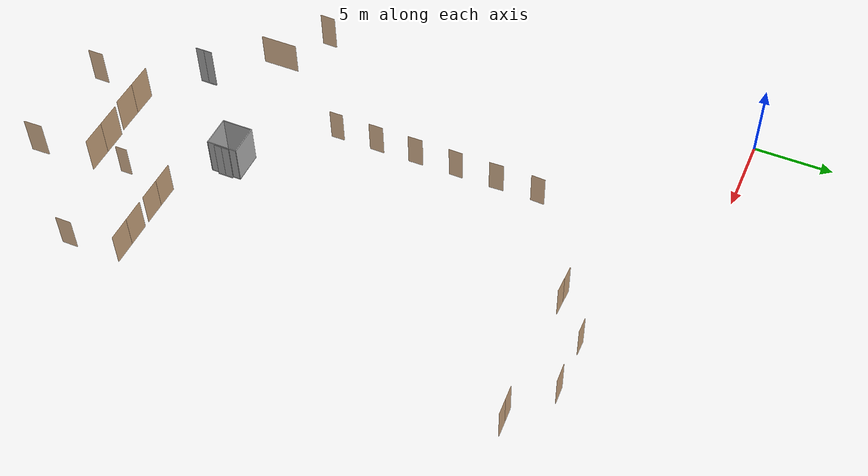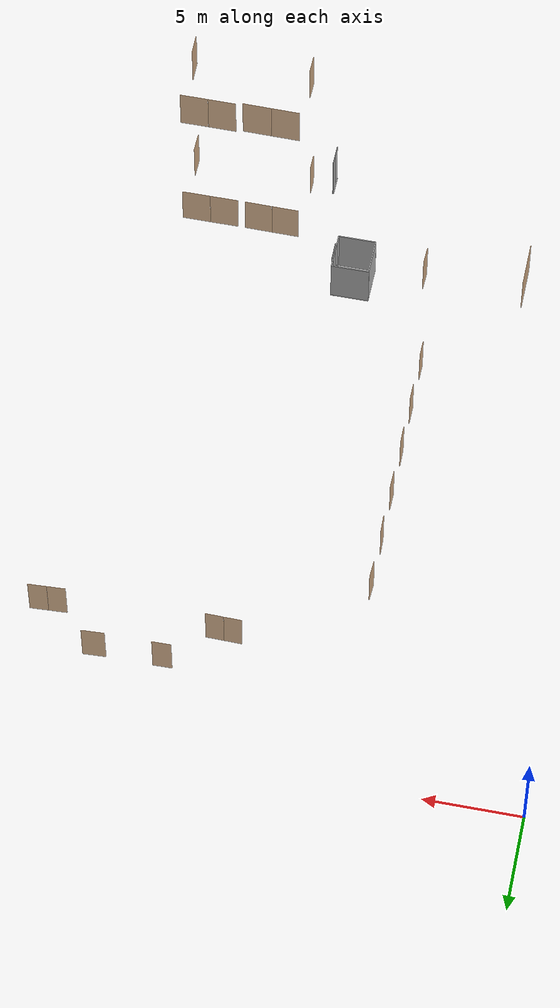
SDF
<sdf version="1.7">
 <world name="sim_world">
  <physics name="10ms" type="ode">
   <max_step_size>0.01</max_step_size>
   <real_time_factor>1.0</real_time_factor>
  </physics>
  <plugin filename="libgz-sim-physics-system.so" name="gz::sim::systems::Physics"/>
  <plugin filename="libgz-sim-user-commands-system.so" name="gz::sim::systems::UserCommands"/>
  <plugin filename="libgz-sim-scene-broadcaster-system.so" name="gz::sim::systems::SceneBroadcaster"/>
  <plugin filename="libdoor.so" name="door"/>
  <plugin filename="liblift.so" name="lift"/>
  <scene><ambient>1 1 1</ambient><background>0.8 0.8 0.8</background><grid>false</grid></scene>
  <light type="directional" name="sun">
   <pose>0 0 10 0 0 0</pose>
   <diffuse>1 1 1 1</diffuse>
   <specular>0.2 0.2 0.2 1</specular>
   <attenuation>
    <range>1000</range>
    <constant>0.09</constant>
    <linear>0.001</linear>
    <quadratic>0.001</quadratic>
   </attenuation>
   <direction>-0.5 0.1 -0.9</direction>
  </light>
  <model name="D1">
   <pose>18.720044101489805 -4.684742985787809 0.0 0 0 -3.1257893716102303</pose>
   <link name="right">
    <pose>0 0 1.11 0 0 0</pose>
    <visual name="right_visual">
     <geometry><box><size>0.9679328813677555 0.03 2.2</size></box></geometry>
     <material>
      <ambient>0.5 0.25 0 0.6</ambient>
      <diffuse>0.5 0.25 0 0.6</diffuse>
      <pbr><metal><metalness>0.0</metalness></metal></pbr>
     </material>
    </visual>
    <collision name="right_collision">
     <geometry><box><size>0.9679328813677555 0.03 2.2</size></box></geometry>
     <surface><contact><collide_bitmask>0x02</collide_bitmask></contact></surface>
    </collision>
    <inertial>
     <mass>50.0</mass>
     <inertia><ixx>20.17041666666667</ixx><iyy>24.07039192847036</iyy><izz>3.907475261803689</izz></inertia>
    </inertial>
   </link>
   <joint name="right_joint" type="prismatic">
    <parent>world</parent>
    <child>right</child>
    <axis>
     <xyz>1 0 0</xyz>
     <limit><lower>0.0</lower><upper>0.9779328813677555</upper><effort>500.0</effort></limit>
    </axis>
   </joint>
   <plugin name="register_component" filename="libregister_component.so">
    <component name="Door">
     <v_max_door>0.2</v_max_door>
     <a_max_door>0.2</a_max_door>
     <a_nom_door>0.08</a_nom_door>
     <dx_min_door>0.001</dx_min_door>
     <f_max_door>100.0</f_max_door>
     <ros_interface>true</ros_interface>
     <door name="D1" type="SlidingDoor" left_joint_name="empty_joint" right_joint_name="right_joint"/>
    </component>
   </plugin>
  </model>
  <model name="D2">
   <pose>22.12810289003186 -4.646453060483513 0.0 0 0 -3.089583908872444</pose>
   <link name="right">
    <pose>0 0 1.11 0 0 0</pose>
    <visual name="right_visual">
     <geometry><box><size>1.1658313053192306 0.03 2.2</size></box></geometry>
     <material>
      <ambient>0.5 0.25 0 0.6</ambient>
      <diffuse>0.5 0.25 0 0.6</diffuse>
      <pbr><metal><metalness>0.0</metalness></metal></pbr>
     </material>
    </visual>
    <collision name="right_collision">
     <geometry><box><size>1.1658313053192306 0.03 2.2</size></box></geometry>
     <surface><contact><collide_bitmask>0x02</collide_bitmask></contact></surface>
    </collision>
    <inertial>
     <mass>50.0</mass>
     <inertia><ixx>20.17041666666667</ixx><iyy>25.829844301926425</iyy><izz>5.666927635259754</izz></inertia>
    </inertial>
   </link>
   <joint name="right_joint" type="prismatic">
    <parent>world</parent>
    <child>right</child>
    <axis>
     <xyz>1 0 0</xyz>
     <limit><lower>0.0</lower><upper>1.1758313053192306</upper><effort>500.0</effort></limit>
    </axis>
   </joint>
   <plugin name="register_component" filename="libregister_component.so">
    <component name="Door">
     <v_max_door>0.2</v_max_door>
     <a_max_door>0.2</a_max_door>
     <a_nom_door>0.08</a_nom_door>
     <dx_min_door>0.001</dx_min_door>
     <f_max_door>100.0</f_max_door>
     <ros_interface>true</ros_interface>
     <door name="D2" type="SlidingDoor" left_joint_name="empty_joint" right_joint_name="right_joint"/>
    </component>
   </plugin>
  </model>
  <model name="D4">
   <pose>24.92635821840749 -6.705641308277513 0.0 0 0 -3.089743979736643</pose>
   <link name="right">
    <pose>0.4743955140775369 0 1.11 0 0 0</pose>
    <visual name="right_visual">
     <geometry><box><size>0.9387910281550738 0.03 2.2</size></box></geometry>
     <material>
      <ambient>0.5 0.25 0 0.6</ambient>
      <diffuse>0.5 0.25 0 0.6</diffuse>
      <pbr><metal><metalness>0.0</metalness></metal></pbr>
     </material>
    </visual>
    <collision name="right_collision">
     <geometry><box><size>0.9387910281550738 0.03 2.2</size></box></geometry>
     <surface><contact><collide_bitmask>0x02</collide_bitmask></contact></surface>
    </collision>
    <inertial>
     <mass>50.0</mass>
     <inertia><ixx>20.17041666666667</ixx><iyy>23.83886914393526</iyy><izz>3.6759524772685856</izz></inertia>
    </inertial>
   </link>
   <joint name="right_joint" type="prismatic">
    <parent>world</parent>
    <child>right</child>
    <axis>
     <xyz>1 0 0</xyz>
     <limit><lower>0.0</lower><upper>0.9487910281550738</upper><effort>500.0</effort></limit>
    </axis>
   </joint>
   <link name="left">
    <pose>-0.4743955140775369 0 1.11 0 0 0</pose>
    <visual name="left_visual">
     <geometry><box><size>0.9387910281550738 0.03 2.2</size></box></geometry>
     <material>
      <ambient>0.5 0.25 0 0.6</ambient>
      <diffuse>0.5 0.25 0 0.6</diffuse>
      <pbr><metal><metalness>0.0</metalness></metal></pbr>
     </material>
    </visual>
    <collision name="left_collision">
     <geometry><box><size>0.9387910281550738 0.03 2.2</size></box></geometry>
     <surface><contact><collide_bitmask>0x02</collide_bitmask></contact></surface>
    </collision>
    <inertial>
     <mass>50.0</mass>
     <inertia><ixx>20.17041666666667</ixx><iyy>23.83886914393526</iyy><izz>3.6759524772685856</izz></inertia>
    </inertial>
   </link>
   <joint name="left_joint" type="prismatic">
    <parent>world</parent>
    <child>left</child>
    <axis>
     <xyz>1 0 0</xyz>
     <limit><lower>-0.9487910281550738</lower><upper>0.0</upper><effort>500.0</effort></limit>
    </axis>
   </joint>
   <plugin name="register_component" filename="libregister_component.so">
    <component name="Door">
     <v_max_door>0.2</v_max_door>
     <a_max_door>0.2</a_max_door>
     <a_nom_door>0.08</a_nom_door>
     <dx_min_door>0.001</dx_min_door>
     <f_max_door>100.0</f_max_door>
     <ros_interface>true</ros_interface>
     <door name="D4" type="DoubleSlidingDoor" left_joint_name="left_joint" right_joint_name="right_joint"/>
    </component>
   </plugin>
  </model>
  <model name="D3">
   <pose>16.08326293109357 -6.7379157049566185 0.0 0 0 3.1232373078030125</pose>
   <link name="right">
    <pose>0.46030379560155715 0 1.11 0 0 0</pose>
    <visual name="right_visual">
     <geometry><box><size>0.9106075912031143 0.03 2.2</size></box></geometry>
     <material>
      <ambient>0.5 0.25 0 0.6</ambient>
      <diffuse>0.5 0.25 0 0.6</diffuse>
      <pbr><metal><metalness>0.0</metalness></metal></pbr>
     </material>
    </visual>
    <collision name="right_collision">
     <geometry><box><size>0.9106075912031143 0.03 2.2</size></box></geometry>
     <surface><contact><collide_bitmask>0x02</collide_bitmask></contact></surface>
    </collision>
    <inertial>
     <mass>50.0</mass>
     <inertia><ixx>20.17041666666667</ixx><iyy>23.62169243815308</iyy><izz>3.458775771486409</izz></inertia>
    </inertial>
   </link>
   <joint name="right_joint" type="prismatic">
    <parent>world</parent>
    <child>right</child>
    <axis>
     <xyz>1 0 0</xyz>
     <limit><lower>0.0</lower><upper>0.9206075912031143</upper><effort>500.0</effort></limit>
    </axis>
   </joint>
   <link name="left">
    <pose>-0.46030379560155715 0 1.11 0 0 0</pose>
    <visual name="left_visual">
     <geometry><box><size>0.9106075912031143 0.03 2.2</size></box></geometry>
     <material>
      <ambient>0.5 0.25 0 0.6</ambient>
      <diffuse>0.5 0.25 0 0.6</diffuse>
      <pbr><metal><metalness>0.0</metalness></metal></pbr>
     </material>
    </visual>
    <collision name="left_collision">
     <geometry><box><size>0.9106075912031143 0.03 2.2</size></box></geometry>
     <surface><contact><collide_bitmask>0x02</collide_bitmask></contact></surface>
    </collision>
    <inertial>
     <mass>50.0</mass>
     <inertia><ixx>20.17041666666667</ixx><iyy>23.62169243815308</iyy><izz>3.458775771486409</izz></inertia>
    </inertial>
   </link>
   <joint name="left_joint" type="prismatic">
    <parent>world</parent>
    <child>left</child>
    <axis>
     <xyz>1 0 0</xyz>
     <limit><lower>-0.9206075912031143</lower><upper>0.0</upper><effort>500.0</effort></limit>
    </axis>
   </joint>
   <plugin name="register_component" filename="libregister_component.so">
    <component name="Door">
     <v_max_door>0.2</v_max_door>
     <a_max_door>0.2</a_max_door>
     <a_nom_door>0.08</a_nom_door>
     <dx_min_door>0.001</dx_min_door>
     <f_max_door>100.0</f_max_door>
     <ros_interface>true</ros_interface>
     <door name="D3" type="DoubleSlidingDoor" left_joint_name="left_joint" right_joint_name="right_joint"/>
    </component>
   </plugin>
  </model>
  <model name="D7">
   <pose>9.528699516886945 -10.90330528094659 0.0 0 0 1.5216555923788775</pose>
   <link name="right">
    <pose>0 0 1.11 0 0 0</pose>
    <visual name="right_visual">
     <geometry><box><size>0.897946558549573 0.03 2.2</size></box></geometry>
     <material>
      <ambient>0.5 0.25 0 0.6</ambient>
      <diffuse>0.5 0.25 0 0.6</diffuse>
      <pbr><metal><metalness>0.0</metalness></metal></pbr>
     </material>
    </visual>
    <collision name="right_collision">
     <geometry><box><size>0.897946558549573 0.03 2.2</size></box></geometry>
     <surface><contact><collide_bitmask>0x02</collide_bitmask></contact></surface>
    </collision>
    <inertial>
     <mass>50.0</mass>
     <inertia><ixx>20.17041666666667</ixx><iyy>23.52628342504593</iyy><izz>3.363366758379257</izz></inertia>
    </inertial>
   </link>
   <joint name="right_joint" type="prismatic">
    <parent>world</parent>
    <child>right</child>
    <axis>
     <xyz>1 0 0</xyz>
     <limit><lower>0.0</lower><upper>0.907946558549573</upper><effort>500.0</effort></limit>
    </axis>
   </joint>
   <plugin name="register_component" filename="libregister_component.so">
    <component name="Door">
     <v_max_door>0.2</v_max_door>
     <a_max_door>0.2</a_max_door>
     <a_nom_door>0.08</a_nom_door>
     <dx_min_door>0.001</dx_min_door>
     <f_max_door>100.0</f_max_door>
     <ros_interface>true</ros_interface>
     <door name="D7" type="SlidingDoor" left_joint_name="empty_joint" right_joint_name="right_joint"/>
    </component>
   </plugin>
  </model>
  <model name="D8">
   <pose>9.524344325249599 -13.6089776645154 0.0 0 0 1.6089519608012752</pose>
   <link name="right">
    <pose>0 0 1.11 0 0 0</pose>
    <visual name="right_visual">
     <geometry><box><size>0.9308186532775621 0.03 2.2</size></box></geometry>
     <material>
      <ambient>0.5 0.25 0 0.6</ambient>
      <diffuse>0.5 0.25 0 0.6</diffuse>
      <pbr><metal><metalness>0.0</metalness></metal></pbr>
     </material>
    </visual>
    <collision name="right_collision">
     <geometry><box><size>0.9308186532775621 0.03 2.2</size></box></geometry>
     <surface><contact><collide_bitmask>0x02</collide_bitmask></contact></surface>
    </collision>
    <inertial>
     <mass>50.0</mass>
     <inertia><ixx>20.17041666666667</ixx><iyy>23.776764022039398</iyy><izz>3.6138473553727266</izz></inertia>
    </inertial>
   </link>
   <joint name="right_joint" type="prismatic">
    <parent>world</parent>
    <child>right</child>
    <axis>
     <xyz>1 0 0</xyz>
     <limit><lower>0.0</lower><upper>0.9408186532775621</upper><effort>500.0</effort></limit>
    </axis>
   </joint>
   <plugin name="register_component" filename="libregister_component.so">
    <component name="Door">
     <v_max_door>0.2</v_max_door>
     <a_max_door>0.2</a_max_door>
     <a_nom_door>0.08</a_nom_door>
     <dx_min_door>0.001</dx_min_door>
     <f_max_door>100.0</f_max_door>
     <ros_interface>true</ros_interface>
     <door name="D8" type="SlidingDoor" left_joint_name="empty_joint" right_joint_name="right_joint"/>
    </component>
   </plugin>
  </model>
  <model name="D9">
   <pose>9.535468583068159 -16.29389583573615 0.0 0 0 1.555978485356067</pose>
   <link name="right">
    <pose>0 0 1.11 0 0 0</pose>
    <visual name="right_visual">
     <geometry><box><size>0.9105663442170852 0.03 2.2</size></box></geometry>
     <material>
      <ambient>0.5 0.25 0 0.6</ambient>
      <diffuse>0.5 0.25 0 0.6</diffuse>
      <pbr><metal><metalness>0.0</metalness></metal></pbr>
     </material>
    </visual>
    <collision name="right_collision">
     <geometry><box><size>0.9105663442170852 0.03 2.2</size></box></geometry>
     <surface><contact><collide_bitmask>0x02</collide_bitmask></contact></surface>
    </collision>
    <inertial>
     <mass>50.0</mass>
     <inertia><ixx>20.17041666666667</ixx><iyy>23.62137944675362</iyy><izz>3.458462780086947</izz></inertia>
    </inertial>
   </link>
   <joint name="right_joint" type="prismatic">
    <parent>world</parent>
    <child>right</child>
    <axis>
     <xyz>1 0 0</xyz>
     <limit><lower>0.0</lower><upper>0.9205663442170852</upper><effort>500.0</effort></limit>
    </axis>
   </joint>
   <plugin name="register_component" filename="libregister_component.so">
    <component name="Door">
     <v_max_door>0.2</v_max_door>
     <a_max_door>0.2</a_max_door>
     <a_nom_door>0.08</a_nom_door>
     <dx_min_door>0.001</dx_min_door>
     <f_max_door>100.0</f_max_door>
     <ros_interface>true</ros_interface>
     <door name="D9" type="SlidingDoor" left_joint_name="empty_joint" right_joint_name="right_joint"/>
    </component>
   </plugin>
  </model>
  <model name="D10">
   <pose>9.535609073120977 -19.00663103741479 0.0 0 0 1.5850605078275433</pose>
   <link name="right">
    <pose>0 0 1.11 0 0 0</pose>
    <visual name="right_visual">
     <geometry><box><size>0.9659942837260804 0.03 2.2</size></box></geometry>
     <material>
      <ambient>0.5 0.25 0 0.6</ambient>
      <diffuse>0.5 0.25 0 0.6</diffuse>
      <pbr><metal><metalness>0.0</metalness></metal></pbr>
     </material>
    </visual>
    <collision name="right_collision">
     <geometry><box><size>0.9659942837260804 0.03 2.2</size></box></geometry>
     <surface><contact><collide_bitmask>0x02</collide_bitmask></contact></surface>
    </collision>
    <inertial>
     <mass>50.0</mass>
     <inertia><ixx>20.17041666666667</ixx><iyy>24.054770650797767</iyy><izz>3.891853984131097</izz></inertia>
    </inertial>
   </link>
   <joint name="right_joint" type="prismatic">
    <parent>world</parent>
    <child>right</child>
    <axis>
     <xyz>1 0 0</xyz>
     <limit><lower>0.0</lower><upper>0.9759942837260804</upper><effort>500.0</effort></limit>
    </axis>
   </joint>
   <plugin name="register_component" filename="libregister_component.so">
    <component name="Door">
     <v_max_door>0.2</v_max_door>
     <a_max_door>0.2</a_max_door>
     <a_nom_door>0.08</a_nom_door>
     <dx_min_door>0.001</dx_min_door>
     <f_max_door>100.0</f_max_door>
     <ros_interface>true</ros_interface>
     <door name="D10" type="SlidingDoor" left_joint_name="empty_joint" right_joint_name="right_joint"/>
    </component>
   </plugin>
  </model>
  <model name="D11">
   <pose>9.543731952538433 -21.674677630474445 0.0 0 0 1.5732226004959984</pose>
   <link name="right">
    <pose>0 0 1.11 0 0 0</pose>
    <visual name="right_visual">
     <geometry><box><size>0.9480428055361436 0.03 2.2</size></box></geometry>
     <material>
      <ambient>0.5 0.25 0 0.6</ambient>
      <diffuse>0.5 0.25 0 0.6</diffuse>
      <pbr><metal><metalness>0.0</metalness></metal></pbr>
     </material>
    </visual>
    <collision name="right_collision">
     <geometry><box><size>0.9480428055361436 0.03 2.2</size></box></geometry>
     <surface><contact><collide_bitmask>0x02</collide_bitmask></contact></surface>
    </collision>
    <inertial>
     <mass>50.0</mass>
     <inertia><ixx>20.17041666666667</ixx><iyy>23.911604838036848</iyy><izz>3.7486881713701763</izz></inertia>
    </inertial>
   </link>
   <joint name="right_joint" type="prismatic">
    <parent>world</parent>
    <child>right</child>
    <axis>
     <xyz>1 0 0</xyz>
     <limit><lower>0.0</lower><upper>0.9580428055361436</upper><effort>500.0</effort></limit>
    </axis>
   </joint>
   <plugin name="register_component" filename="libregister_component.so">
    <component name="Door">
     <v_max_door>0.2</v_max_door>
     <a_max_door>0.2</a_max_door>
     <a_nom_door>0.08</a_nom_door>
     <dx_min_door>0.001</dx_min_door>
     <f_max_door>100.0</f_max_door>
     <ros_interface>true</ros_interface>
     <door name="D11" type="SlidingDoor" left_joint_name="empty_joint" right_joint_name="right_joint"/>
    </component>
   </plugin>
  </model>
  <model name="D12">
   <pose>9.544306684572685 -24.398268881688992 0.0 0 0 1.5694859355668107</pose>
   <link name="right">
    <pose>0 0 1.11 0 0 0</pose>
    <visual name="right_visual">
     <geometry><box><size>0.8866849178800399 0.03 2.2</size></box></geometry>
     <material>
      <ambient>0.5 0.25 0 0.6</ambient>
      <diffuse>0.5 0.25 0 0.6</diffuse>
      <pbr><metal><metalness>0.0</metalness></metal></pbr>
     </material>
    </visual>
    <collision name="right_collision">
     <geometry><box><size>0.8866849178800399 0.03 2.2</size></box></geometry>
     <surface><contact><collide_bitmask>0x02</collide_bitmask></contact></surface>
    </collision>
    <inertial>
     <mass>50.0</mass>
     <inertia><ixx>20.17041666666667</ixx><iyy>23.442542264983057</iyy><izz>3.2796255983163882</izz></inertia>
    </inertial>
   </link>
   <joint name="right_joint" type="prismatic">
    <parent>world</parent>
    <child>right</child>
    <axis>
     <xyz>1 0 0</xyz>
     <limit><lower>0.0</lower><upper>0.8966849178800399</upper><effort>500.0</effort></limit>
    </axis>
   </joint>
   <plugin name="register_component" filename="libregister_component.so">
    <component name="Door">
     <v_max_door>0.2</v_max_door>
     <a_max_door>0.2</a_max_door>
     <a_nom_door>0.08</a_nom_door>
     <dx_min_door>0.001</dx_min_door>
     <f_max_door>100.0</f_max_door>
     <ros_interface>true</ros_interface>
     <door name="D12" type="SlidingDoor" left_joint_name="empty_joint" right_joint_name="right_joint"/>
    </component>
   </plugin>
  </model>
  <model name="D5">
   <pose>18.86538744704114 -31.748861706983305 0.0 0 0 3.1309271958714677</pose>
   <link name="right">
    <pose>0.7197076151679108 0 1.11 0 0 0</pose>
    <visual name="right_visual">
     <geometry><box><size>1.4294152303358216 0.03 2.2</size></box></geometry>
     <material>
      <ambient>0.5 0.25 0 0.6</ambient>
      <diffuse>0.5 0.25 0 0.6</diffuse>
      <pbr><metal><metalness>0.0</metalness></metal></pbr>
     </material>
    </visual>
    <collision name="right_collision">
     <geometry><box><size>1.4294152303358216 0.03 2.2</size></box></geometry>
     <surface><contact><collide_bitmask>0x02</collide_bitmask></contact></surface>
    </collision>
    <inertial>
     <mass>50.0</mass>
     <inertia><ixx>20.17041666666667</ixx><iyy>28.68011625298338</iyy><izz>8.51719958631671</izz></inertia>
    </inertial>
   </link>
   <joint name="right_joint" type="revolute">
    <parent>world</parent>
    <child>right</child>
    <axis><xyz>0 0 -1</xyz><limit><lower>0</lower><upper>1.57</upper></limit></axis>
    <pose>0.7197076151679108 0 0 0 0 0</pose>
   </joint>
   <link name="left">
    <pose>-0.7197076151679108 0 1.11 0 0 0</pose>
    <visual name="left_visual">
     <geometry><box><size>1.4294152303358216 0.03 2.2</size></box></geometry>
     <material>
      <ambient>0.5 0.25 0 0.6</ambient>
      <diffuse>0.5 0.25 0 0.6</diffuse>
      <pbr><metal><metalness>0.0</metalness></metal></pbr>
     </material>
    </visual>
    <collision name="left_collision">
     <geometry><box><size>1.4294152303358216 0.03 2.2</size></box></geometry>
     <surface><contact><collide_bitmask>0x02</collide_bitmask></contact></surface>
    </collision>
    <inertial>
     <mass>50.0</mass>
     <inertia><ixx>20.17041666666667</ixx><iyy>28.68011625298338</iyy><izz>8.51719958631671</izz></inertia>
    </inertial>
   </link>
   <joint name="left_joint" type="revolute">
    <parent>world</parent>
    <child>left</child>
    <axis><xyz>0 0 -1</xyz><limit><lower>-1.57</lower><upper>0</upper></limit></axis>
    <pose>-0.7197076151679108 0 0 0 0 0</pose>
   </joint>
   <plugin name="register_component" filename="libregister_component.so">
    <component name="Door">
     <v_max_door>0.5</v_max_door>
     <a_max_door>0.3</a_max_door>
     <a_nom_door>0.15</a_nom_door>
     <dx_min_door>0.01</dx_min_door>
     <f_max_door>500.0</f_max_door>
     <ros_interface>true</ros_interface>
     <door name="D5" type="DoubleSwingDoor" left_joint_name="left_joint" right_joint_name="right_joint"/>
    </component>
   </plugin>
  </model>
  <model name="D6">
   <pose>22.169113213631626 -31.764213438209378 0.0 0 0 3.141592653589793</pose>
   <link name="right">
    <pose>0.7478093934137799 0 1.11 0 0 0</pose>
    <visual name="right_visual">
     <geometry><box><size>1.4856187868275599 0.03 2.2</size></box></geometry>
     <material>
      <ambient>0.5 0.25 0 0.6</ambient>
      <diffuse>0.5 0.25 0 0.6</diffuse>
      <pbr><metal><metalness>0.0</metalness></metal></pbr>
     </material>
    </visual>
    <collision name="right_collision">
     <geometry><box><size>1.4856187868275599 0.03 2.2</size></box></geometry>
     <surface><contact><collide_bitmask>0x02</collide_bitmask></contact></surface>
    </collision>
    <inertial>
     <mass>50.0</mass>
     <inertia><ixx>20.17041666666667</ixx><iyy>29.362763249062464</iyy><izz>9.199846582395796</izz></inertia>
    </inertial>
   </link>
   <joint name="right_joint" type="revolute">
    <parent>world</parent>
    <child>right</child>
    <axis><xyz>0 0 -1</xyz><limit><lower>0</lower><upper>1.57</upper></limit></axis>
    <pose>0.7478093934137799 0 0 0 0 0</pose>
   </joint>
   <link name="left">
    <pose>-0.7478093934137799 0 1.11 0 0 0</pose>
    <visual name="left_visual">
     <geometry><box><size>1.4856187868275599 0.03 2.2</size></box></geometry>
     <material>
      <ambient>0.5 0.25 0 0.6</ambient>
      <diffuse>0.5 0.25 0 0.6</diffuse>
      <pbr><metal><metalness>0.0</metalness></metal></pbr>
     </material>
    </visual>
    <collision name="left_collision">
     <geometry><box><size>1.4856187868275599 0.03 2.2</size></box></geometry>
     <surface><contact><collide_bitmask>0x02</collide_bitmask></contact></surface>
    </collision>
    <inertial>
     <mass>50.0</mass>
     <inertia><ixx>20.17041666666667</ixx><iyy>29.362763249062464</iyy><izz>9.199846582395796</izz></inertia>
    </inertial>
   </link>
   <joint name="left_joint" type="revolute">
    <parent>world</parent>
    <child>left</child>
    <axis><xyz>0 0 -1</xyz><limit><lower>-1.57</lower><upper>0</upper></limit></axis>
    <pose>-0.7478093934137799 0 0 0 0 0</pose>
   </joint>
   <plugin name="register_component" filename="libregister_component.so">
    <component name="Door">
     <v_max_door>0.5</v_max_door>
     <a_max_door>0.3</a_max_door>
     <a_nom_door>0.15</a_nom_door>
     <dx_min_door>0.01</dx_min_door>
     <f_max_door>500.0</f_max_door>
     <ros_interface>true</ros_interface>
     <door name="D6" type="DoubleSwingDoor" left_joint_name="left_joint" right_joint_name="right_joint"/>
    </component>
   </plugin>
  </model>
  <model name="dorz2">
   <pose>17.381889120224844 -35.089638532048696 0.0 0 0 1.5707963267948966</pose>
   <link name="right">
    <pose>0 0 1.11 0 0 0</pose>
    <visual name="right_visual">
     <geometry><box><size>0.7791453984996275 0.03 2.2</size></box></geometry>
     <material>
      <ambient>0.5 0.25 0 0.6</ambient>
      <diffuse>0.5 0.25 0 0.6</diffuse>
      <pbr><metal><metalness>0.0</metalness></metal></pbr>
     </material>
    </visual>
    <collision name="right_collision">
     <geometry><box><size>0.7791453984996275 0.03 2.2</size></box></geometry>
     <surface><contact><collide_bitmask>0x02</collide_bitmask></contact></surface>
    </collision>
    <inertial>
     <mass>50.0</mass>
     <inertia><ixx>20.17041666666667</ixx><iyy>22.696114800013103</iyy><izz>2.533198133346431</izz></inertia>
    </inertial>
   </link>
   <joint name="right_joint" type="revolute">
    <parent>world</parent>
    <child>right</child>
    <axis><xyz>0 0 1</xyz><limit><lower>0</lower><upper>1.57</upper></limit></axis>
    <pose>0.39457269924981375 0 0 0 0 0</pose>
   </joint>
   <plugin name="register_component" filename="libregister_component.so">
    <component name="Door">
     <v_max_door>0.5</v_max_door>
     <a_max_door>0.3</a_max_door>
     <a_nom_door>0.15</a_nom_door>
     <dx_min_door>0.01</dx_min_door>
     <f_max_door>500.0</f_max_door>
     <ros_interface>true</ros_interface>
     <door name="dorz2" type="SwingDoor" left_joint_name="empty_joint" right_joint_name="right_joint"/>
    </component>
   </plugin>
  </model>
  <model name="DOOR2">
   <pose>23.638038890423836 -35.13140239320448 0.0 0 0 1.5707963267948966</pose>
   <link name="right">
    <pose>0 0 1.11 0 0 0</pose>
    <visual name="right_visual">
     <geometry><box><size>1.0243643997813032 0.03 2.2</size></box></geometry>
     <material>
      <ambient>0.5 0.25 0 0.6</ambient>
      <diffuse>0.5 0.25 0 0.6</diffuse>
      <pbr><metal><metalness>0.0</metalness></metal></pbr>
     </material>
    </visual>
    <collision name="right_collision">
     <geometry><box><size>1.0243643997813032 0.03 2.2</size></box></geometry>
     <surface><contact><collide_bitmask>0x02</collide_bitmask></contact></surface>
    </collision>
    <inertial>
     <mass>50.0</mass>
     <inertia><ixx>20.17041666666667</ixx><iyy>24.538843431413795</iyy><izz>4.375926764747124</izz></inertia>
    </inertial>
   </link>
   <joint name="right_joint" type="revolute">
    <parent>world</parent>
    <child>right</child>
    <axis><xyz>0 0 -1</xyz><limit><lower>0</lower><upper>1.57</upper></limit></axis>
    <pose>0.5171821998906516 0 0 0 0 0</pose>
   </joint>
   <plugin name="register_component" filename="libregister_component.so">
    <component name="Door">
     <v_max_door>0.5</v_max_door>
     <a_max_door>0.3</a_max_door>
     <a_nom_door>0.15</a_nom_door>
     <dx_min_door>0.01</dx_min_door>
     <f_max_door>500.0</f_max_door>
     <ros_interface>true</ros_interface>
     <door name="DOOR2" type="SwingDoor" left_joint_name="empty_joint" right_joint_name="right_joint"/>
    </component>
   </plugin>
  </model>
  <model name="doorz1">
   <pose>5.17383994693792 -30.737307783050383 0.0 0 0 1.5707963267948966</pose>
   <link name="right">
    <pose>0 0 1.11 0 0 0</pose>
    <visual name="right_visual">
     <geometry><box><size>2.436979109039614 0.03 2.2</size></box></geometry>
     <material>
      <ambient>0.5 0.25 0 0.6</ambient>
      <diffuse>0.5 0.25 0 0.6</diffuse>
      <pbr><metal><metalness>0.0</metalness></metal></pbr>
     </material>
    </visual>
    <collision name="right_collision">
     <geometry><box><size>2.436979109039614 0.03 2.2</size></box></geometry>
     <surface><contact><collide_bitmask>0x02</collide_bitmask></contact></surface>
    </collision>
    <inertial>
     <mass>50.0</mass>
     <inertia><ixx>20.17041666666667</ixx><iyy>44.91194657456463</iyy><izz>24.74902990789796</izz></inertia>
    </inertial>
   </link>
   <joint name="right_joint" type="prismatic">
    <parent>world</parent>
    <child>right</child>
    <axis>
     <xyz>1 0 0</xyz>
     <limit><lower>0.0</lower><upper>2.4469791090396136</upper><effort>500.0</effort></limit>
    </axis>
   </joint>
   <plugin name="register_component" filename="libregister_component.so">
    <component name="Door">
     <v_max_door>0.2</v_max_door>
     <a_max_door>0.2</a_max_door>
     <a_nom_door>0.08</a_nom_door>
     <dx_min_door>0.001</dx_min_door>
     <f_max_door>100.0</f_max_door>
     <ros_interface>true</ros_interface>
     <door name="doorz1" type="SlidingDoor" left_joint_name="empty_joint" right_joint_name="right_joint"/>
    </component>
   </plugin>
  </model>
  <model name="D21">
   <pose>18.88875300154898 -31.844863562145612 8.0 0 0 3.127116344744134</pose>
   <link name="right">
    <pose>0.739578573934684 0 1.11 0 0 0</pose>
    <visual name="right_visual">
     <geometry><box><size>1.469157147869368 0.03 2.2</size></box></geometry>
     <material>
      <ambient>0.5 0.25 0 0.6</ambient>
      <diffuse>0.5 0.25 0 0.6</diffuse>
      <pbr><metal><metalness>0.0</metalness></metal></pbr>
     </material>
    </visual>
    <collision name="right_collision">
     <geometry><box><size>1.469157147869368 0.03 2.2</size></box></geometry>
     <surface><contact><collide_bitmask>0x02</collide_bitmask></contact></surface>
    </collision>
    <inertial>
     <mass>50.0</mass>
     <inertia><ixx>20.17041666666667</ixx><iyy>29.160094688065236</iyy><izz>8.997178021398566</izz></inertia>
    </inertial>
   </link>
   <joint name="right_joint" type="revolute">
    <parent>world</parent>
    <child>right</child>
    <axis><xyz>0 0 -1</xyz><limit><lower>0</lower><upper>1.57</upper></limit></axis>
    <pose>0.739578573934684 0 0 0 0 0</pose>
   </joint>
   <link name="left">
    <pose>-0.739578573934684 0 1.11 0 0 0</pose>
    <visual name="left_visual">
     <geometry><box><size>1.469157147869368 0.03 2.2</size></box></geometry>
     <material>
      <ambient>0.5 0.25 0 0.6</ambient>
      <diffuse>0.5 0.25 0 0.6</diffuse>
      <pbr><metal><metalness>0.0</metalness></metal></pbr>
     </material>
    </visual>
    <collision name="left_collision">
     <geometry><box><size>1.469157147869368 0.03 2.2</size></box></geometry>
     <surface><contact><collide_bitmask>0x02</collide_bitmask></contact></surface>
    </collision>
    <inertial>
     <mass>50.0</mass>
     <inertia><ixx>20.17041666666667</ixx><iyy>29.160094688065236</iyy><izz>8.997178021398566</izz></inertia>
    </inertial>
   </link>
   <joint name="left_joint" type="revolute">
    <parent>world</parent>
    <child>left</child>
    <axis><xyz>0 0 -1</xyz><limit><lower>-1.57</lower><upper>0</upper></limit></axis>
    <pose>-0.739578573934684 0 0 0 0 0</pose>
   </joint>
   <plugin name="register_component" filename="libregister_component.so">
    <component name="Door">
     <v_max_door>0.5</v_max_door>
     <a_max_door>0.3</a_max_door>
     <a_nom_door>0.15</a_nom_door>
     <dx_min_door>0.01</dx_min_door>
     <f_max_door>500.0</f_max_door>
     <ros_interface>true</ros_interface>
     <door name="D21" type="DoubleSwingDoor" left_joint_name="left_joint" right_joint_name="right_joint"/>
    </component>
   </plugin>
  </model>
  <model name="D22">
   <pose>22.150442512327572 -31.774928832762654 8.0 0 0 3.1364192866605576</pose>
   <link name="right">
    <pose>0.7255880361581512 0 1.11 0 0 0</pose>
    <visual name="right_visual">
     <geometry><box><size>1.4411760723163023 0.03 2.2</size></box></geometry>
     <material>
      <ambient>0.5 0.25 0 0.6</ambient>
      <diffuse>0.5 0.25 0 0.6</diffuse>
      <pbr><metal><metalness>0.0</metalness></metal></pbr>
     </material>
    </visual>
    <collision name="right_collision">
     <geometry><box><size>1.4411760723163023 0.03 2.2</size></box></geometry>
     <surface><contact><collide_bitmask>0x02</collide_bitmask></contact></surface>
    </collision>
    <inertial>
     <mass>50.0</mass>
     <inertia><ixx>20.17041666666667</ixx><iyy>28.820785297571017</iyy><izz>8.65786863090435</izz></inertia>
    </inertial>
   </link>
   <joint name="right_joint" type="revolute">
    <parent>world</parent>
    <child>right</child>
    <axis><xyz>0 0 -1</xyz><limit><lower>0</lower><upper>1.57</upper></limit></axis>
    <pose>0.7255880361581512 0 0 0 0 0</pose>
   </joint>
   <link name="left">
    <pose>-0.7255880361581512 0 1.11 0 0 0</pose>
    <visual name="left_visual">
     <geometry><box><size>1.4411760723163023 0.03 2.2</size></box></geometry>
     <material>
      <ambient>0.5 0.25 0 0.6</ambient>
      <diffuse>0.5 0.25 0 0.6</diffuse>
      <pbr><metal><metalness>0.0</metalness></metal></pbr>
     </material>
    </visual>
    <collision name="left_collision">
     <geometry><box><size>1.4411760723163023 0.03 2.2</size></box></geometry>
     <surface><contact><collide_bitmask>0x02</collide_bitmask></contact></surface>
    </collision>
    <inertial>
     <mass>50.0</mass>
     <inertia><ixx>20.17041666666667</ixx><iyy>28.820785297571017</iyy><izz>8.65786863090435</izz></inertia>
    </inertial>
   </link>
   <joint name="left_joint" type="revolute">
    <parent>world</parent>
    <child>left</child>
    <axis><xyz>0 0 -1</xyz><limit><lower>-1.57</lower><upper>0</upper></limit></axis>
    <pose>-0.7255880361581512 0 0 0 0 0</pose>
   </joint>
   <plugin name="register_component" filename="libregister_component.so">
    <component name="Door">
     <v_max_door>0.5</v_max_door>
     <a_max_door>0.3</a_max_door>
     <a_nom_door>0.15</a_nom_door>
     <dx_min_door>0.01</dx_min_door>
     <f_max_door>500.0</f_max_door>
     <ros_interface>true</ros_interface>
     <door name="D22" type="DoubleSwingDoor" left_joint_name="left_joint" right_joint_name="right_joint"/>
    </component>
   </plugin>
  </model>
  <model name="door1">
   <pose>17.443446183795047 -35.1092007278768 8.0 0 0 1.565622959865661</pose>
   <link name="right">
    <pose>0 0 1.11 0 0 0</pose>
    <visual name="right_visual">
     <geometry><box><size>0.9126316482192812 0.03 2.2</size></box></geometry>
     <material>
      <ambient>0.5 0.25 0 0.6</ambient>
      <diffuse>0.5 0.25 0 0.6</diffuse>
      <pbr><metal><metalness>0.0</metalness></metal></pbr>
     </material>
    </visual>
    <collision name="right_collision">
     <geometry><box><size>0.9126316482192812 0.03 2.2</size></box></geometry>
     <surface><contact><collide_bitmask>0x02</collide_bitmask></contact></surface>
    </collision>
    <inertial>
     <mass>50.0</mass>
     <inertia><ixx>20.17041666666667</ixx><iyy>23.637068855547682</iyy><izz>3.4741521888810083</izz></inertia>
    </inertial>
   </link>
   <joint name="right_joint" type="revolute">
    <parent>world</parent>
    <child>right</child>
    <axis><xyz>0 0 1</xyz><limit><lower>0</lower><upper>1.57</upper></limit></axis>
    <pose>0.4613158241096406 0 0 0 0 0</pose>
   </joint>
   <plugin name="register_component" filename="libregister_component.so">
    <component name="Door">
     <v_max_door>0.5</v_max_door>
     <a_max_door>0.3</a_max_door>
     <a_nom_door>0.15</a_nom_door>
     <dx_min_door>0.01</dx_min_door>
     <f_max_door>500.0</f_max_door>
     <ros_interface>true</ros_interface>
     <door name="door1" type="SwingDoor" left_joint_name="empty_joint" right_joint_name="right_joint"/>
    </component>
   </plugin>
  </model>
  <model name="door2">
   <pose>23.600851500333057 -35.1751370616326 8.0 0 0 1.6004001383223114</pose>
   <link name="right">
    <pose>0 0 1.11 0 0 0</pose>
    <visual name="right_visual">
     <geometry><box><size>1.0772107119491567 0.03 2.2</size></box></geometry>
     <material>
      <ambient>0.5 0.25 0 0.6</ambient>
      <diffuse>0.5 0.25 0 0.6</diffuse>
      <pbr><metal><metalness>0.0</metalness></metal></pbr>
     </material>
    </visual>
    <collision name="right_collision">
     <geometry><box><size>1.0772107119491567 0.03 2.2</size></box></geometry>
     <surface><contact><collide_bitmask>0x02</collide_bitmask></contact></surface>
    </collision>
    <inertial>
     <mass>50.0</mass>
     <inertia><ixx>20.17041666666667</ixx><iyy>25.001595491408377</iyy><izz>4.838678824741705</izz></inertia>
    </inertial>
   </link>
   <joint name="right_joint" type="revolute">
    <parent>world</parent>
    <child>right</child>
    <axis><xyz>0 0 -1</xyz><limit><lower>0</lower><upper>1.57</upper></limit></axis>
    <pose>0.5436053559745784 0 0 0 0 0</pose>
   </joint>
   <plugin name="register_component" filename="libregister_component.so">
    <component name="Door">
     <v_max_door>0.5</v_max_door>
     <a_max_door>0.3</a_max_door>
     <a_nom_door>0.15</a_nom_door>
     <dx_min_door>0.01</dx_min_door>
     <f_max_door>500.0</f_max_door>
     <ros_interface>true</ros_interface>
     <door name="door2" type="SwingDoor" left_joint_name="empty_joint" right_joint_name="right_joint"/>
    </component>
   </plugin>
  </model>
  <model name="door3">
   <pose>9.56994146967768 -24.352249286425018 8.0 0 0 1.5358513716896705</pose>
   <link name="right">
    <pose>0 0 1.11 0 0 0</pose>
    <visual name="right_visual">
     <geometry><box><size>0.8964851639905869 0.03 2.2</size></box></geometry>
     <material>
      <ambient>0.5 0.25 0 0.6</ambient>
      <diffuse>0.5 0.25 0 0.6</diffuse>
      <pbr><metal><metalness>0.0</metalness></metal></pbr>
     </material>
    </visual>
    <collision name="right_collision">
     <geometry><box><size>0.8964851639905869 0.03 2.2</size></box></geometry>
     <surface><contact><collide_bitmask>0x02</collide_bitmask></contact></surface>
    </collision>
    <inertial>
     <mass>50.0</mass>
     <inertia><ixx>20.17041666666667</ixx><iyy>23.515356871896795</iyy><izz>3.352440205230123</izz></inertia>
    </inertial>
   </link>
   <joint name="right_joint" type="prismatic">
    <parent>world</parent>
    <child>right</child>
    <axis>
     <xyz>1 0 0</xyz>
     <limit><lower>0.0</lower><upper>0.9064851639905869</upper><effort>500.0</effort></limit>
    </axis>
   </joint>
   <plugin name="register_component" filename="libregister_component.so">
    <component name="Door">
     <v_max_door>0.2</v_max_door>
     <a_max_door>0.2</a_max_door>
     <a_nom_door>0.08</a_nom_door>
     <dx_min_door>0.001</dx_min_door>
     <f_max_door>100.0</f_max_door>
     <ros_interface>true</ros_interface>
     <door name="door3" type="SlidingDoor" left_joint_name="empty_joint" right_joint_name="right_joint"/>
    </component>
   </plugin>
  </model>
  <model name="ShaftDoor_lift1_L1_doors">
   <pose>15.099005281763208 -29.375192861868527 0.0 0 0 1.5707</pose>
   <link name="right_door">
    <pose>0.25 0 1.25 0 0 0</pose>
    <visual name="right_door_visual">
     <geometry><box><size>0.5 0.03 2.5</size></box></geometry>
     <material>
      <ambient>0.5 0.5 0.5 1</ambient>
      <diffuse>0.7 0.7 0.7 1</diffuse>
      <specular>0.6 0.6 0.6 1</specular>
      <emissive>0.1 0.1 0.1 1</emissive>
     </material>
    </visual>
    <collision name="right_door_collision">
     <geometry><box><size>0.5 0.03 2.5</size></box></geometry>
     <surface><contact><collide_bitmask>0x02</collide_bitmask></contact></surface>
    </collision>
   </link>
   <link name="left_door">
    <pose>-0.25 0 1.25 0 0 0</pose>
    <visual name="left_door_visual">
     <geometry><box><size>0.5 0.03 2.5</size></box></geometry>
     <material>
      <ambient>0.5 0.5 0.5 1</ambient>
      <diffuse>0.7 0.7 0.7 1</diffuse>
      <specular>0.6 0.6 0.6 1</specular>
      <emissive>0.1 0.1 0.1 1</emissive>
     </material>
    </visual>
    <collision name="left_door_collision">
     <geometry><box><size>0.5 0.03 2.5</size></box></geometry>
     <surface><contact><collide_bitmask>0x02</collide_bitmask></contact></surface>
    </collision>
   </link>
   <joint name="right_joint" type="prismatic">
    <parent>world</parent>
    <child>right_door</child>
    <axis><xyz>1 0 0</xyz><limit><lower>0</lower><upper>0.5</upper></limit></axis>
   </joint>
   <joint name="left_joint" type="prismatic">
    <parent>world</parent>
    <child>left_door</child>
    <axis><xyz>1 0 0</xyz><limit><lower>-0.5</lower><upper>0</upper></limit></axis>
   </joint>
   <link name="ramp">
    <pose>0 0 -0.025 0 0 0</pose>
    <visual name="ramp_visual">
     <geometry><box><size>1.0 0.1 0.05</size></box></geometry>
     <material>
      <ambient>0.5 0.5 0.5 1</ambient>
      <diffuse>0.7 0.7 0.7 1</diffuse>
      <specular>0.6 0.6 0.6 1</specular>
      <emissive>0.1 0.1 0.1 1</emissive>
     </material>
    </visual>
    <collision name="ramp_collision">
     <geometry><box><size>1.0 0.1 0.05</size></box></geometry>
     <surface><contact><collide_bitmask>0x02</collide_bitmask></contact></surface>
    </collision>
   </link>
   <joint name="ramp_joint" type="fixed"><parent>world</parent><child>ramp</child></joint>
   <plugin name="register_component" filename="libregister_component.so">
    <component name="Door">
     <v_max_door>0.3</v_max_door>
     <a_max_door>0.2</a_max_door>
     <a_nom_door>0.1</a_nom_door>
     <dx_min_door>0.0001</dx_min_door>
     <f_max_door>35.0</f_max_door>
     <door left_joint_name="left_joint" name="ShaftDoor_lift1_L1_doors" right_joint_name="right_joint" type="DoubleSlidingDoor"/>
    </component>
   </plugin>
  </model>
  <model name="ShaftDoor_lift1_L2_doors">
   <pose>15.099005281763208 -29.375192861868527 8.0 0 0 1.5707</pose>
   <link name="right_door">
    <pose>0.25 0 1.25 0 0 0</pose>
    <visual name="right_door_visual">
     <geometry><box><size>0.5 0.03 2.5</size></box></geometry>
     <material>
      <ambient>0.5 0.5 0.5 1</ambient>
      <diffuse>0.7 0.7 0.7 1</diffuse>
      <specular>0.6 0.6 0.6 1</specular>
      <emissive>0.1 0.1 0.1 1</emissive>
     </material>
    </visual>
    <collision name="right_door_collision">
     <geometry><box><size>0.5 0.03 2.5</size></box></geometry>
     <surface><contact><collide_bitmask>0x02</collide_bitmask></contact></surface>
    </collision>
   </link>
   <link name="left_door">
    <pose>-0.25 0 1.25 0 0 0</pose>
    <visual name="left_door_visual">
     <geometry><box><size>0.5 0.03 2.5</size></box></geometry>
     <material>
      <ambient>0.5 0.5 0.5 1</ambient>
      <diffuse>0.7 0.7 0.7 1</diffuse>
      <specular>0.6 0.6 0.6 1</specular>
      <emissive>0.1 0.1 0.1 1</emissive>
     </material>
    </visual>
    <collision name="left_door_collision">
     <geometry><box><size>0.5 0.03 2.5</size></box></geometry>
     <surface><contact><collide_bitmask>0x02</collide_bitmask></contact></surface>
    </collision>
   </link>
   <joint name="right_joint" type="prismatic">
    <parent>world</parent>
    <child>right_door</child>
    <axis><xyz>1 0 0</xyz><limit><lower>0</lower><upper>0.5</upper></limit></axis>
   </joint>
   <joint name="left_joint" type="prismatic">
    <parent>world</parent>
    <child>left_door</child>
    <axis><xyz>1 0 0</xyz><limit><lower>-0.5</lower><upper>0</upper></limit></axis>
   </joint>
   <link name="ramp">
    <pose>0 0 -0.025 0 0 0</pose>
    <visual name="ramp_visual">
     <geometry><box><size>1.0 0.1 0.05</size></box></geometry>
     <material>
      <ambient>0.5 0.5 0.5 1</ambient>
      <diffuse>0.7 0.7 0.7 1</diffuse>
      <specular>0.6 0.6 0.6 1</specular>
      <emissive>0.1 0.1 0.1 1</emissive>
     </material>
    </visual>
    <collision name="ramp_collision">
     <geometry><box><size>1.0 0.1 0.05</size></box></geometry>
     <surface><contact><collide_bitmask>0x02</collide_bitmask></contact></surface>
    </collision>
   </link>
   <joint name="ramp_joint" type="fixed"><parent>world</parent><child>ramp</child></joint>
   <plugin name="register_component" filename="libregister_component.so">
    <component name="Door">
     <v_max_door>0.3</v_max_door>
     <a_max_door>0.2</a_max_door>
     <a_nom_door>0.1</a_nom_door>
     <dx_min_door>0.0001</dx_min_door>
     <f_max_door>35.0</f_max_door>
     <door left_joint_name="left_joint" name="ShaftDoor_lift1_L2_doors" right_joint_name="right_joint" type="DoubleSlidingDoor"/>
    </component>
   </plugin>
  </model>
  <model name="lift1">
   <link name="platform">
    <inertial>
     <mass>1200</mass>
     <inertia><ixx>400.25000000000006</ixx><iyy>400.25000000000006</iyy><izz>800.0</izz></inertia>
    </inertial>
    <visual name="floor_visual">
     <pose>0 0 -0.025 0 0 0</pose>
     <geometry><box><size>2.0 2.0 0.05</size></box></geometry>
     <material>
      <ambient>0.5 0.5 0.5 1</ambient>
      <diffuse>0.7 0.7 0.7 1</diffuse>
      <specular>0.6 0.6 0.6 1</specular>
      <emissive>0.1 0.1 0.1 1</emissive>
     </material>
    </visual>
    <collision name="floor_collision">
     <pose>0 0 -0.025 0 0 0</pose>
     <geometry><box><size>2.0 2.0 0.05</size></box></geometry>
     <surface><contact><collide_bitmask>0x01</collide_bitmask></contact></surface>
    </collision>
    <visual name="frontwall1_visual">
     <pose>0.0 0.975 1.25 0 0 0</pose>
     <geometry><box><size>2.0 0.05 2.5</size></box></geometry>
     <material>
      <ambient>0.5 0.5 0.5 1</ambient>
      <diffuse>0.7 0.7 0.7 1</diffuse>
      <specular>0.6 0.6 0.6 1</specular>
      <emissive>0.1 0.1 0.1 1</emissive>
     </material>
    </visual>
    <collision name="frontwall1_collision">
     <pose>0.0 0.975 1.25 0 0 0</pose>
     <geometry><box><size>2.0 0.05 2.5</size></box></geometry>
     <surface><contact><collide_bitmask>0x01</collide_bitmask></contact></surface>
    </collision>
    <visual name="backwall1_visual">
     <pose>0.0 -0.975 1.25 0 0 0</pose>
     <geometry><box><size>2.0 0.05 2.5</size></box></geometry>
     <material>
      <ambient>0.5 0.5 0.5 1</ambient>
      <diffuse>0.7 0.7 0.7 1</diffuse>
      <specular>0.6 0.6 0.6 1</specular>
      <emissive>0.1 0.1 0.1 1</emissive>
     </material>
    </visual>
    <collision name="backwall1_collision">
     <pose>0.0 -0.975 1.25 0 0 0</pose>
     <geometry><box><size>2.0 0.05 2.5</size></box></geometry>
     <surface><contact><collide_bitmask>0x01</collide_bitmask></contact></surface>
    </collision>
    <visual name="leftwall1_visual">
     <pose>-0.975 0.0 1.25 0 0 1.5707963267948966</pose>
     <geometry><box><size>1.9 0.05 2.5</size></box></geometry>
     <material>
      <ambient>0.5 0.5 0.5 1</ambient>
      <diffuse>0.7 0.7 0.7 1</diffuse>
      <specular>0.6 0.6 0.6 1</specular>
      <emissive>0.1 0.1 0.1 1</emissive>
     </material>
    </visual>
    <collision name="leftwall1_collision">
     <pose>-0.975 0.0 1.25 0 0 1.5707963267948966</pose>
     <geometry><box><size>1.9 0.05 2.5</size></box></geometry>
     <surface><contact><collide_bitmask>0x01</collide_bitmask></contact></surface>
    </collision>
    <visual name="rightwall1_visual">
     <pose>0.975 -0.725 1.25 0 0 1.5707963267948966</pose>
     <geometry><box><size>0.44999999999999996 0.05 2.5</size></box></geometry>
     <material>
      <ambient>0.5 0.5 0.5 1</ambient>
      <diffuse>0.7 0.7 0.7 1</diffuse>
      <specular>0.6 0.6 0.6 1</specular>
      <emissive>0.1 0.1 0.1 1</emissive>
     </material>
    </visual>
    <collision name="rightwall1_collision">
     <pose>0.975 -0.725 1.25 0 0 1.5707963267948966</pose>
     <geometry><box><size>0.44999999999999996 0.05 2.5</size></box></geometry>
     <surface><contact><collide_bitmask>0x01</collide_bitmask></contact></surface>
    </collision>
    <visual name="rightwall2_visual">
     <pose>0.975 0.725 1.25 0 0 1.5707963267948966</pose>
     <geometry><box><size>0.44999999999999996 0.05 2.5</size></box></geometry>
     <material>
      <ambient>0.5 0.5 0.5 1</ambient>
      <diffuse>0.7 0.7 0.7 1</diffuse>
      <specular>0.6 0.6 0.6 1</specular>
      <emissive>0.1 0.1 0.1 1</emissive>
     </material>
    </visual>
    <collision name="rightwall2_collision">
     <pose>0.975 0.725 1.25 0 0 1.5707963267948966</pose>
     <geometry><box><size>0.44999999999999996 0.05 2.5</size></box></geometry>
     <surface><contact><collide_bitmask>0x01</collide_bitmask></contact></surface>
    </collision>
   </link>
   <joint name="cabin_joint" type="prismatic">
    <parent>world</parent>
    <child>platform</child>
    <axis><xyz>0 0 1</xyz></axis>
   </joint>
   <model name="CabinDoor_lift1_doors">
    <pose>0.975 0.0 0 0 0 1.5707</pose>
    <link name="right_door">
     <pose>0.25 0 1.25 0 0 0</pose>
     <visual name="right_door_visual">
      <geometry><box><size>0.5 0.03 2.5</size></box></geometry>
      <material>
       <ambient>0.5 0.5 0.5 1</ambient>
       <diffuse>0.7 0.7 0.7 1</diffuse>
       <specular>0.6 0.6 0.6 1</specular>
       <emissive>0.1 0.1 0.1 1</emissive>
      </material>
     </visual>
     <collision name="right_door_collision">
      <geometry><box><size>0.5 0.03 2.5</size></box></geometry>
      <surface><contact><collide_bitmask>0x02</collide_bitmask></contact></surface>
     </collision>
    </link>
    <link name="left_door">
     <pose>-0.25 0 1.25 0 0 0</pose>
     <visual name="left_door_visual">
      <geometry><box><size>0.5 0.03 2.5</size></box></geometry>
      <material>
       <ambient>0.5 0.5 0.5 1</ambient>
       <diffuse>0.7 0.7 0.7 1</diffuse>
       <specular>0.6 0.6 0.6 1</specular>
       <emissive>0.1 0.1 0.1 1</emissive>
      </material>
     </visual>
     <collision name="left_door_collision">
      <geometry><box><size>0.5 0.03 2.5</size></box></geometry>
      <surface><contact><collide_bitmask>0x02</collide_bitmask></contact></surface>
     </collision>
    </link>
    <plugin name="register_component" filename="libregister_component.so">
     <component name="Door">
      <v_max_door>0.3</v_max_door>
      <a_max_door>0.2</a_max_door>
      <a_nom_door>0.1</a_nom_door>
      <dx_min_door>0.0001</dx_min_door>
      <f_max_door>35.0</f_max_door>
      <door left_joint_name="CabinDoor_lift1_doors_left_joint" name="CabinDoor_lift1_doors" right_joint_name="CabinDoor_lift1_doors_right_joint" type="DoubleSlidingDoor"/>
     </component>
    </plugin>
   </model>
   <joint name="CabinDoor_lift1_doors_right_joint" type="prismatic">
    <parent>platform</parent>
    <child>CabinDoor_lift1_doors::right_door</child>
    <axis><xyz>1 0 0</xyz><limit><lower>0</lower><upper>0.5</upper></limit></axis>
   </joint>
   <joint name="CabinDoor_lift1_doors_left_joint" type="prismatic">
    <parent>platform</parent>
    <child>CabinDoor_lift1_doors::left_door</child>
    <axis><xyz>1 0 0</xyz><limit><lower>-0.5</lower><upper>0</upper></limit></axis>
   </joint>
   <plugin name="register_component" filename="libregister_component.so">
    <component name="Lift">
     <lift_name>lift1</lift_name>
     <floor name="L1" elevation="0.0">
      <door_pair cabin_door="CabinDoor_lift1_doors" shaft_door="ShaftDoor_lift1_L1_doors"/>
     </floor>
     <floor name="L2" elevation="8.0">
      <door_pair cabin_door="CabinDoor_lift1_doors" shaft_door="ShaftDoor_lift1_L2_doors"/>
     </floor>
     <initial_floor>L1</initial_floor>
     <v_max_cabin>2.0</v_max_cabin>
     <a_max_cabin>1.2</a_max_cabin>
     <a_nom_cabin>1.0</a_nom_cabin>
     <dx_min_cabin>0.001</dx_min_cabin>
     <f_max_cabin>25323.0</f_max_cabin>
     <cabin_joint_name>cabin_joint</cabin_joint_name>
    </component>
   </plugin>
   <pose>14.049005281763208 -29.375192861868527 0 0 0 0.0</pose>
  </model>
  <rmf_charger_waypoints name="charger_waypoints">
   <rmf_vertex name="tinyRobot1_charger" x="22.439684283535403" y="-26.604396952907255" level="L1"/>
  </rmf_charger_waypoints>
 </world>
</sdf>
